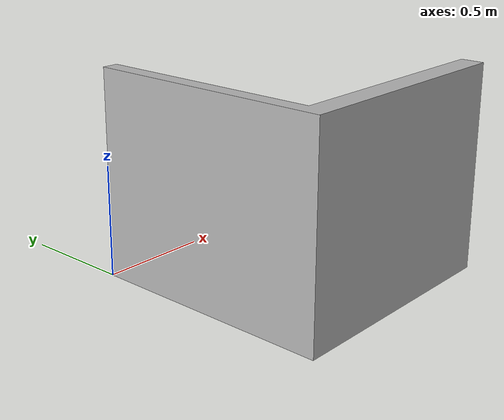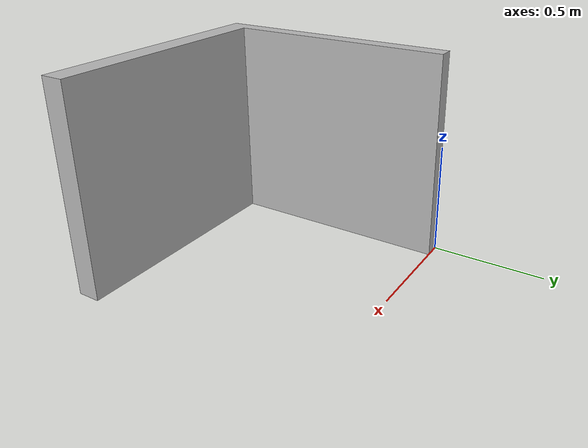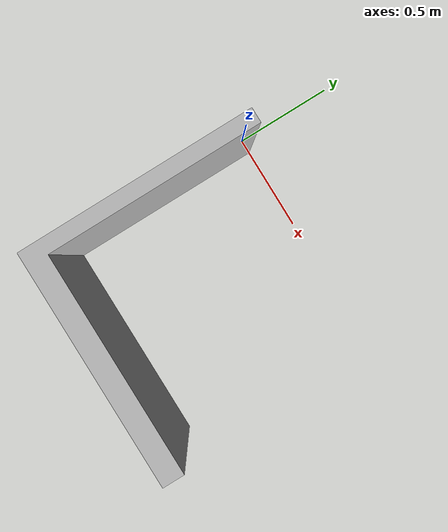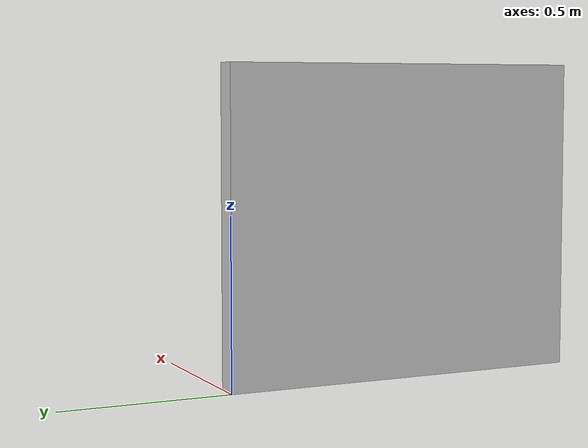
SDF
<?xml version='1.0'?>
<sdf version="1.6">
	<model name="wall">
      <static>true</static>
      <link name="body">
        <collision name = 'collision'>
          <geometry>
            <mesh>
              <uri>model://lwall/lwall.dae</uri>
              <scale>.3048 .3048 .3048</scale>
            </mesh>
          </geometry>
        </collision>
        <visual name="visual">
          <geometry>
            <mesh>
            	<uri>model://lwall/lwall.dae</uri>
            	<scale>.3048 .3048 .3048</scale>
            </mesh>
          </geometry>
        </visual>
      </link>
    </model>

</sdf>
